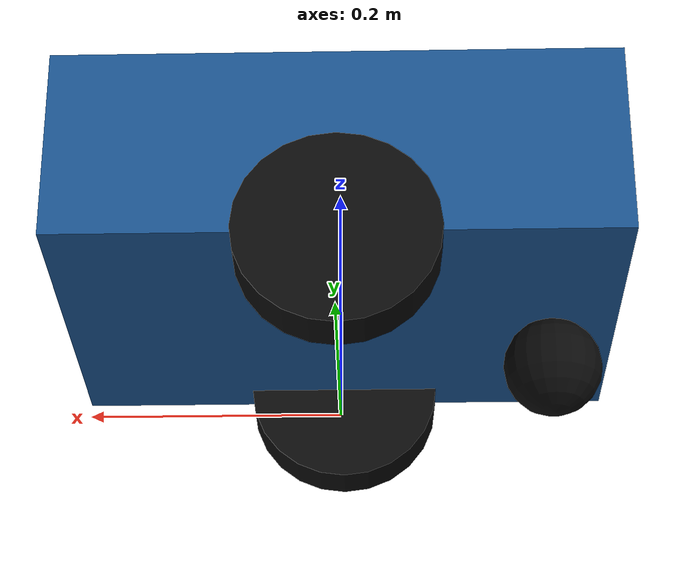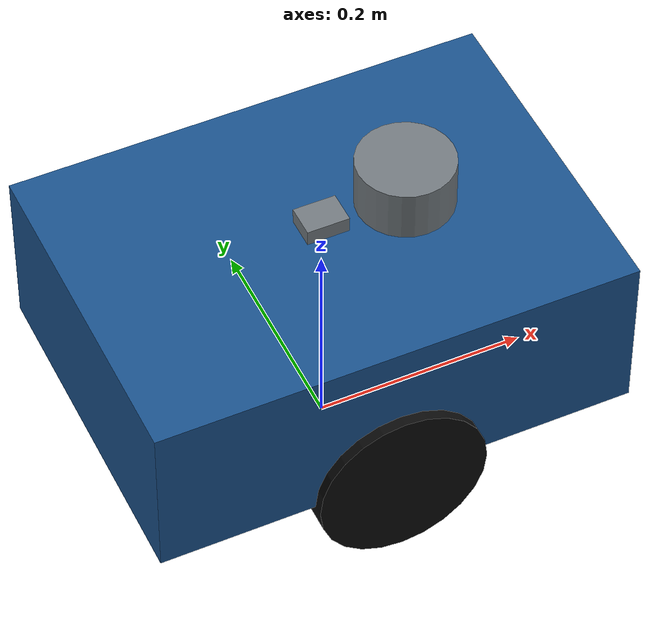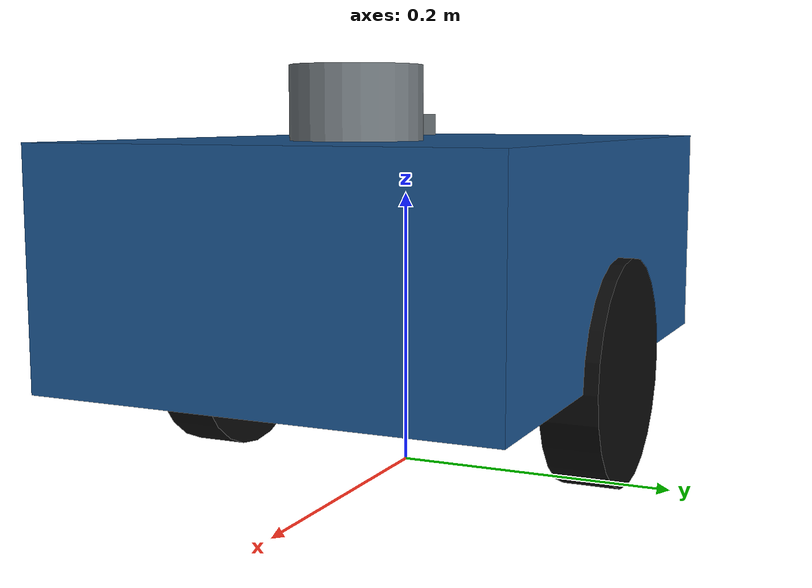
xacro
<?xml version="1.0"?>
<robot xmlns:xacro="http://www.ros.org/wiki/xacro" name="nudge_ugv">
  <xacro:arg name="body_length" default="0.45"/>
  <xacro:arg name="body_width" default="0.32"/>
  <xacro:arg name="body_height" default="0.16"/>
  <xacro:arg name="body_mass" default="10.0"/>
  <xacro:arg name="wheel_radius" default="0.08"/>
  <xacro:arg name="wheel_width" default="0.04"/>
  <xacro:arg name="wheel_separation" default="0.30"/>
  <xacro:arg name="max_linear_speed" default="0.8"/>
  <xacro:arg name="max_angular_speed" default="1.5"/>
  <xacro:arg name="use_imu" default="true"/>

  <xacro:property name="body_length" value="$(arg body_length)"/>
  <xacro:property name="body_width" value="$(arg body_width)"/>
  <xacro:property name="body_height" value="$(arg body_height)"/>
  <xacro:property name="body_mass" value="$(arg body_mass)"/>
  <xacro:property name="wheel_radius" value="$(arg wheel_radius)"/>
  <xacro:property name="wheel_width" value="$(arg wheel_width)"/>
  <xacro:property name="wheel_separation" value="$(arg wheel_separation)"/>
  <!-- Limits are exported as Xacro parameters for future backend/controller configuration. -->
  <xacro:property name="max_linear_speed" value="$(arg max_linear_speed)"/>
  <xacro:property name="max_angular_speed" value="$(arg max_angular_speed)"/>

  <material name="nudge_blue"><color rgba="0.10 0.32 0.55 1.0"/></material>
  <material name="wheel_black"><color rgba="0.04 0.04 0.04 1.0"/></material>
  <material name="sensor_gray"><color rgba="0.45 0.48 0.50 1.0"/></material>

  <link name="base_footprint"/>

  <joint name="base_footprint_joint" type="fixed">
    <parent link="base_footprint"/>
    <child link="base_link"/>
    <origin xyz="0 0 ${wheel_radius + body_height / 2.0}" rpy="0 0 0"/>
  </joint>

  <link name="base_link">
    <visual>
      <geometry><box size="${body_length} ${body_width} ${body_height}"/></geometry>
      <material name="nudge_blue"/>
    </visual>
    <collision>
      <geometry><box size="${body_length} ${body_width} ${body_height}"/></geometry>
    </collision>
    <inertial>
      <mass value="${body_mass}"/>
      <inertia
        ixx="${body_mass * (body_width * body_width + body_height * body_height) / 12.0}"
        ixy="0" ixz="0"
        iyy="${body_mass * (body_length * body_length + body_height * body_height) / 12.0}"
        iyz="0"
        izz="${body_mass * (body_length * body_length + body_width * body_width) / 12.0}"/>
    </inertial>
  </link>

  <xacro:macro name="drive_wheel" params="side y_position">
    <link name="${side}_wheel_link">
      <visual>
        <origin rpy="1.57079632679 0 0"/>
        <geometry><cylinder radius="${wheel_radius}" length="${wheel_width}"/></geometry>
        <material name="wheel_black"/>
      </visual>
      <collision>
        <origin rpy="1.57079632679 0 0"/>
        <geometry><cylinder radius="${wheel_radius}" length="${wheel_width}"/></geometry>
      </collision>
      <inertial>
        <mass value="0.5"/>
        <inertia ixx="0.0017" ixy="0" ixz="0" iyy="0.0032" iyz="0" izz="0.0017"/>
      </inertial>
    </link>
    <joint name="${side}_wheel_joint" type="continuous">
      <parent link="base_link"/>
      <child link="${side}_wheel_link"/>
      <origin xyz="0 ${y_position} ${-body_height / 2.0}" rpy="0 0 0"/>
      <axis xyz="0 1 0"/>
      <limit effort="30" velocity="${max_linear_speed / wheel_radius}"/>
      <dynamics damping="0.1" friction="0.1"/>
    </joint>
  </xacro:macro>

  <xacro:drive_wheel side="left" y_position="${wheel_separation / 2.0}"/>
  <xacro:drive_wheel side="right" y_position="${-wheel_separation / 2.0}"/>

  <link name="caster_link">
    <visual><geometry><sphere radius="0.04"/></geometry><material name="wheel_black"/></visual>
    <collision><geometry><sphere radius="0.04"/></geometry></collision>
    <inertial>
      <mass value="0.2"/>
      <inertia ixx="0.000128" ixy="0" ixz="0" iyy="0.000128" iyz="0" izz="0.000128"/>
    </inertial>
  </link>
  <joint name="caster_joint" type="fixed">
    <parent link="base_link"/>
    <child link="caster_link"/>
    <origin xyz="${-body_length * 0.38} 0 ${-(wheel_radius + body_height / 2.0) + 0.04}"/>
  </joint>

  <link name="lidar_link">
    <visual><geometry><cylinder radius="0.045" length="0.05"/></geometry><material name="sensor_gray"/></visual>
    <collision><geometry><cylinder radius="0.045" length="0.05"/></geometry></collision>
    <inertial>
      <mass value="0.1"/>
      <inertia ixx="0.00007" ixy="0" ixz="0" iyy="0.00007" iyz="0" izz="0.00010"/>
    </inertial>
  </link>
  <joint name="lidar_joint" type="fixed">
    <parent link="base_link"/>
    <child link="lidar_link"/>
    <origin xyz="0.08 0 ${body_height / 2.0 + 0.025}"/>
  </joint>

  <xacro:if value="$(arg use_imu)">
    <link name="imu_link">
      <visual><geometry><box size="0.04 0.03 0.015"/></geometry><material name="sensor_gray"/></visual>
      <collision><geometry><box size="0.04 0.03 0.015"/></geometry></collision>
      <inertial>
        <mass value="0.02"/>
        <inertia ixx="0.000002" ixy="0" ixz="0" iyy="0.000003" iyz="0" izz="0.000004"/>
      </inertial>
    </link>
    <joint name="imu_joint" type="fixed">
      <parent link="base_link"/>
      <child link="imu_link"/>
      <origin xyz="0 0 ${body_height / 2.0 + 0.01}"/>
    </joint>
  </xacro:if>
</robot>
